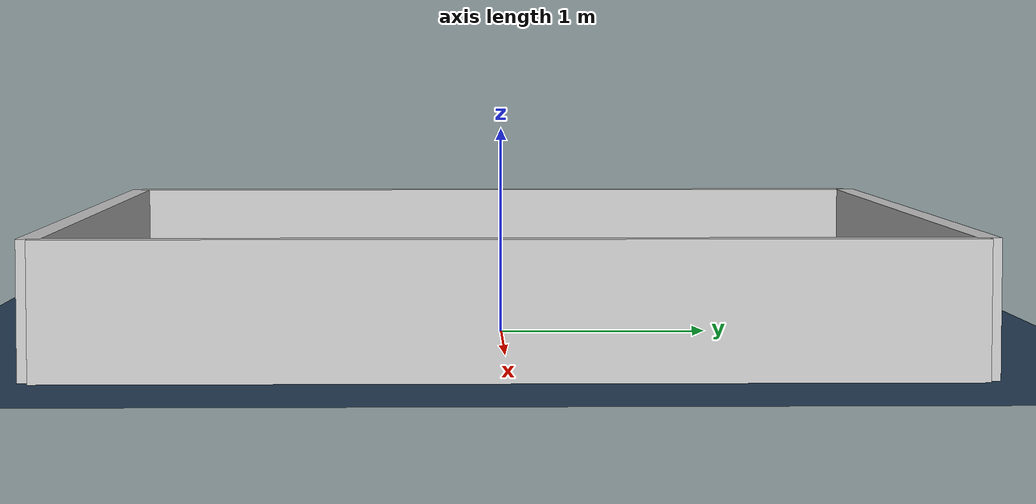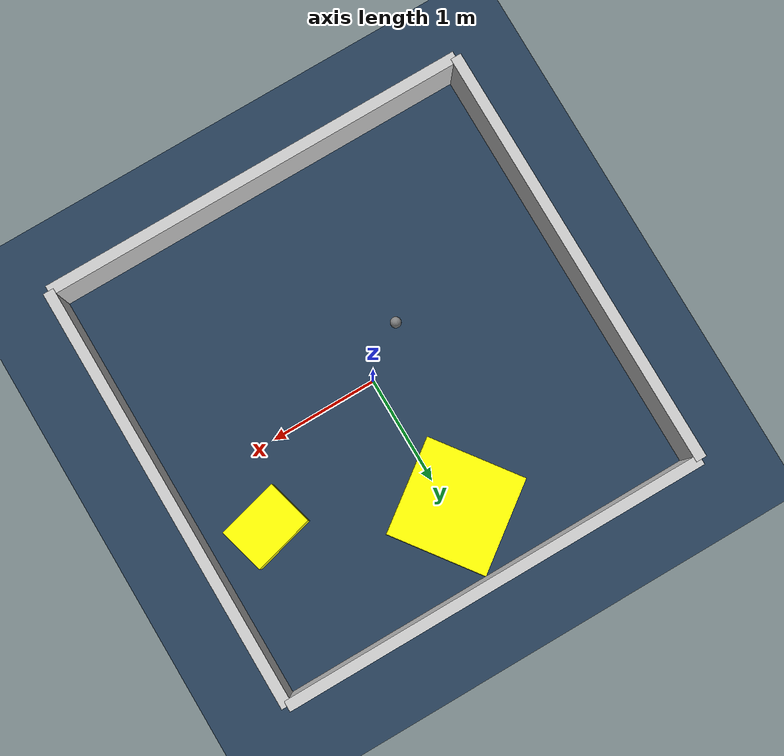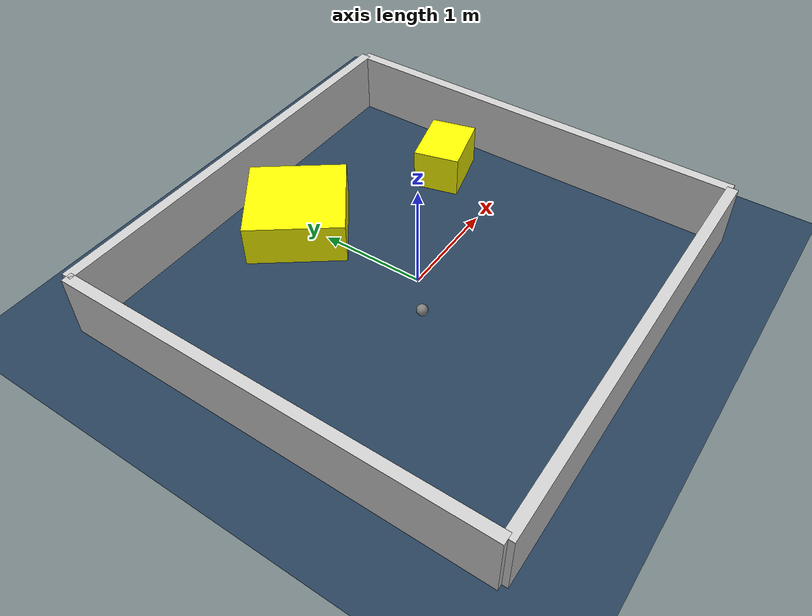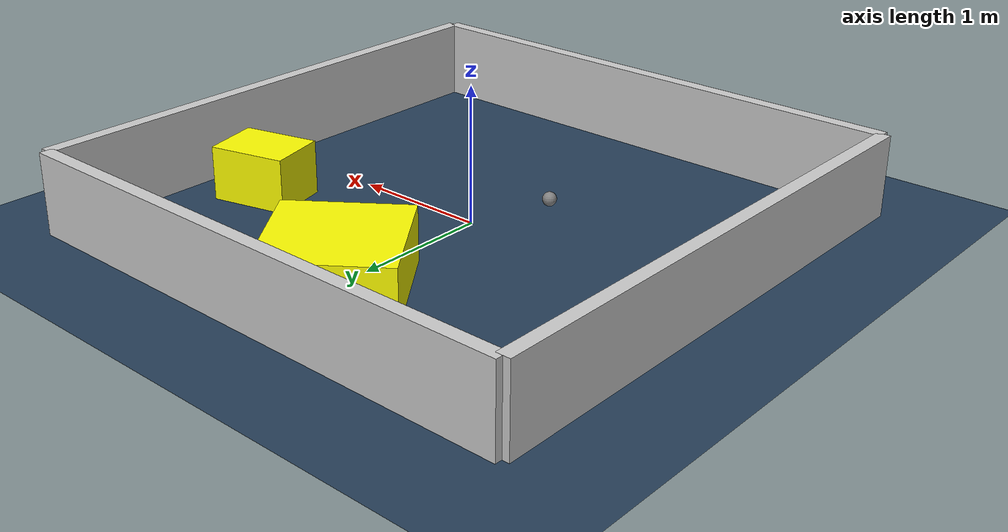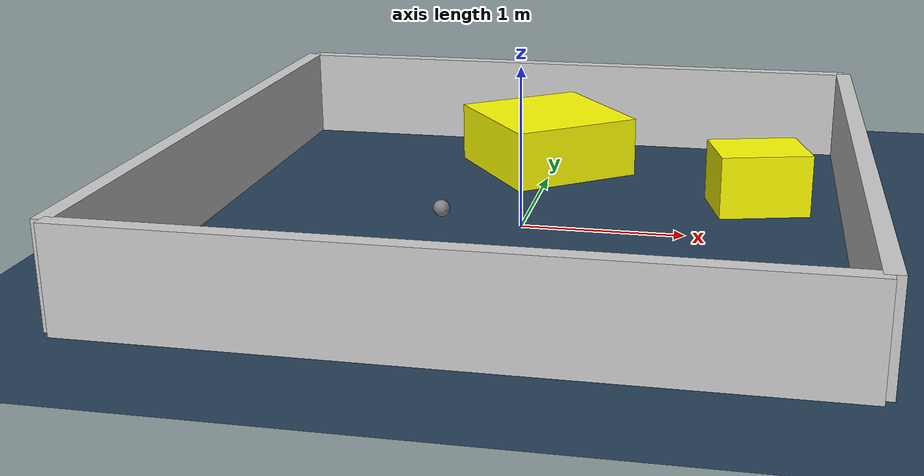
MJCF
<?xml version="1.0" ?>
<mujoco model="generated_environment">
  <option timestep="0.01" integrator="RK4" cone="elliptic"/>
  <default>
    <geom density="1"/>
  </default>
  <asset>
    <texture builtin="gradient" height="3072" rgb1="0.3 0.5 0.7" rgb2="0 0 0" type="skybox" width="512"/>
    <texture builtin="checker" height="300" mark="edge" markrgb="0.8 0.8 0.8" name="groundplane" rgb1="0.2 0.3 0.4" rgb2="0.1 0.2 0.3" type="2d" width="300"/>
    <material name="groundplane" reflectance="0.2" texrepeat="5 5" texture="groundplane" texuniform="true"/>
    <material name="robot" rgba="0.0 1.0 0.0 1"/>
  </asset>
  <worldbody>
    <light dir="0 0 -1" directional="true" pos="0 0 1.5"/>
    <geom condim="4" friction="1.0 0.005 0.001" material="groundplane" name="floor" size="0 0 0.05" type="plane"/>
    <body name="walls">
      <geom name="wall_1" condim="4" pos="-2.0 0.0 0.3" rgba="0.800000011920929 0.800000011920929 0.800000011920929 1.0" size="0.05 2.0 0.3" type="box"/>
      <geom name="wall_2" condim="4" pos="2.0 0.0 0.3" rgba="0.800000011920929 0.800000011920929 0.800000011920929 1.0" size="0.05 2.0 0.3" type="box"/>
      <geom name="wall_3" condim="4" pos="0.0 -2.0 0.3" rgba="0.800000011920929 0.800000011920929 0.800000011920929 1.0" size="2.0 0.05 0.3" type="box"/>
      <geom name="wall_4" condim="4" pos="0.0 2.0 0.3" rgba="0.800000011920929 0.800000011920929 0.800000011920929 1.0" size="2.0 0.05 0.3" type="box"/>
    </body>
    <body name="robot">
      <joint name="joint_x" type="slide" pos="0 0 0" axis="1 0 0"/>
      <joint name="joint_y" type="slide" pos="0 0 0" axis="0 1 0"/>
      <geom name="robot" type="sphere" pos="-0.4225251309230098 -0.3291713325653767 0.2" size="0.05" mass="5." friction="1.0 0.005 0.0001" condim="4"/>
      <site name="sensor_ball"/>
    </body>
    <body name="obstacle_1_movable">
      <geom name="obstacle_1_movable" condim="4" pos="1.4234518671284984 0.62930447420582 0.2" euler="0 0 104.54622996321557" friction="1.0 0.005 0.001" rgba="1 1 0 1" size="0.21837515397617438 0.29100919192067504 0.2" type="box" mass="0.1"/>
      <joint type="free"/>
    </body>
    <body name="obstacle_2_movable">
      <geom name="obstacle_2_movable" condim="4" pos="-0.0510872280261605 1.2989099221947225 0.2" euler="0 0 126.59541207158051" friction="1.0 0.005 0.001" rgba="1 1 0 1" size="0.4549832932360596 0.4480687979349662 0.2" type="box" mass="0.1"/>
      <joint type="free"/>
    </body>
  </worldbody>
  <actuator>
    <motor name="actuator_x" joint="joint_x" gear="1" ctrlrange="-1 1"/>
    <motor name="actuator_y" joint="joint_y" gear="1" ctrlrange="-1 1"/>
  </actuator>
</mujoco>
